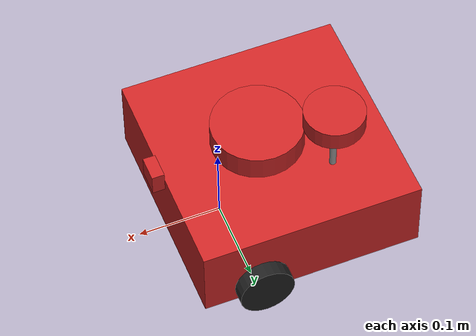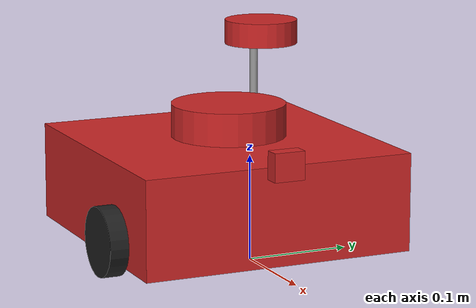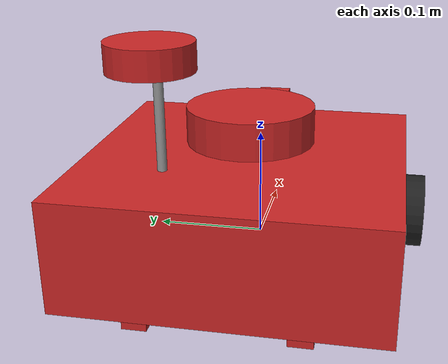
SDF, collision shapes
<?xml version='1.0'?>
<sdf version='1.7'>
  <model name='newred'>
    <link name='base_footprint'>
      <inertial>
        <pose>-0.006056 0 0.019264 0 -0 0</pose>
        <mass>1.49691</mass>
        <inertia>
          <ixx>0.0133097</ixx>
          <ixy>0</ixy>
          <ixz>0.00091065</ixz>
          <iyy>0.0139133</iyy>
          <iyz>0</iyz>
          <izz>0.018379</izz>
        </inertia>
      </inertial>
      <sensor name='Pi Camera' type='camera'>
        <always_on>1</always_on>
        <visualize>0</visualize>
        <camera>
          <horizontal_fov>1.0856</horizontal_fov>
          <image>
            <width>640</width>
            <height>480</height>
            <format>R8G8B8</format>
          </image>
          <clip>
            <near>0.03</near>
            <far>100</far>
          </clip>
        </camera>
        <plugin name='camera_controller' filename='libgazebo_ros_camera.so'>
          <alwaysOn>1</alwaysOn>
          <updateRate>30.0</updateRate>
          <cameraName>camera</cameraName>
          <frameName>camera_rgb_optical_frame</frameName>
          <imageTopicName>rgb/image_raw</imageTopicName>
          <cameraInfoTopicName>rgb/camera_info</cameraInfoTopicName>
          <hackBaseline>0.07</hackBaseline>
          <distortionK1>0.0</distortionK1>
          <distortionK2>0.0</distortionK2>
          <distortionK3>0.0</distortionK3>
          <distortionT1>0.0</distortionT1>
          <distortionT2>0.0</distortionT2>
          <robotNamespace>/red1/</robotNamespace>
        </plugin>
        <pose>0.076 0 0.103 0 -0 0</pose>
      </sensor>
      <sensor name='imu' type='imu'>
        <always_on>1</always_on>
        <visualize>0</visualize>
        <pose>0 0 0.078 0 -0 0</pose>
        <imu/>
      </sensor>
      <sensor name='lds_lfcd_sensor' type='ray'>
        <visualize>0</visualize>
        <update_rate>5</update_rate>
        <ray>
          <scan>
            <horizontal>
              <samples>360</samples>
              <resolution>1</resolution>
              <min_angle>0</min_angle>
              <max_angle>6.28319</max_angle>
            </horizontal>
            <vertical>
              <samples>1</samples>
              <min_angle>0</min_angle>
              <max_angle>0</max_angle>
            </vertical>
          </scan>
          <range>
            <min>0.12</min>
            <max>3.5</max>
            <resolution>0.015</resolution>
          </range>
          <noise>
            <type>gaussian</type>
            <mean>0</mean>
            <stddev>0.01</stddev>
          </noise>
        </ray>
        <plugin name='gazebo_ros_lds_lfcd_controller' filename='libgazebo_ros_laser.so'>
          <topicName>scan</topicName>
          <frameName>base_scan</frameName>
          <robotNamespace>/red1/</robotNamespace>
        </plugin>
        <pose>-0.064 0 0.132 0 -0 0</pose>
      </sensor>
      <self_collide>0</self_collide>
      <enable_wind>0</enable_wind>
      <kinematic>0</kinematic>
      <pose>0 0 0 0 -0 0</pose>
      <gravity>1</gravity>
      <visual name='base_footprint_fixed_joint_lump__base_link_visual'>
        <pose>-0.064 0 0.01 0 -0 0</pose>
        <geometry>
          <mesh>
            <scale>0.001 0.001 0.001</scale>
            <uri>/home/beatriz/catkin_ws/src/turtlebot3/turtlebot3_description/meshes/bases/waffle_pi_base.stl</uri>
          </mesh>
        </geometry>
        <material>
          <script>
            <name>Gazebo/Red</name>
            <uri>file://media/materials/scripts/gazebo.material</uri>
          </script>
          <shader type='pixel'>
            <normal_map>__default__</normal_map>
          </shader>
        </material>
        <transparency>0</transparency>
        <cast_shadows>1</cast_shadows>
      </visual>
      <visual name='base_footprint_fixed_joint_lump__base_scan_visual_1'>
        <pose>-0.064 0 0.132 0 -0 0</pose>
        <geometry>
          <mesh>
            <scale>0.001 0.001 0.001</scale>
            <uri>/home/beatriz/catkin_ws/src/turtlebot3/turtlebot3_description/meshes/sensors/lds.stl</uri>
          </mesh>
        </geometry>
        <material>
          <script>
            <name>Gazebo/FlatBlack</name>
            <uri>file://media/materials/scripts/gazebo.material</uri>
          </script>
          <shader type='pixel'>
            <normal_map>__default__</normal_map>
          </shader>
        </material>
        <transparency>0</transparency>
        <cast_shadows>1</cast_shadows>
      </visual>
      <collision name='base_footprint_fixed_joint_lump__base_link_collision'>
        <laser_retro>0</laser_retro>
        <max_contacts>10</max_contacts>
        <pose>-0.064 0 0.057 0 -0 0</pose>
        <geometry>
          <box>
            <size>0.266 0.266 0.094</size>
          </box>
        </geometry>
        <surface>
          <friction>
            <ode>
              <mu>1</mu>
              <mu2>1</mu2>
              <fdir1>0 0 0</fdir1>
              <slip1>0</slip1>
              <slip2>0</slip2>
            </ode>
            <torsional>
              <coefficient>1</coefficient>
              <patch_radius>0</patch_radius>
              <surface_radius>0</surface_radius>
              <use_patch_radius>1</use_patch_radius>
              <ode>
                <slip>0</slip>
              </ode>
            </torsional>
          </friction>
          <bounce>
            <restitution_coefficient>0</restitution_coefficient>
            <threshold>1e+06</threshold>
          </bounce>
          <contact>
            <collide_without_contact>0</collide_without_contact>
            <collide_without_contact_bitmask>1</collide_without_contact_bitmask>
            <collide_bitmask>1</collide_bitmask>
            <ode>
              <soft_cfm>0</soft_cfm>
              <soft_erp>0.2</soft_erp>
              <kp>1e+13</kp>
              <kd>1</kd>
              <max_vel>0.01</max_vel>
              <min_depth>0</min_depth>
            </ode>
            <bullet>
              <split_impulse>1</split_impulse>
              <split_impulse_penetration_threshold>-0.01</split_impulse_penetration_threshold>
              <soft_cfm>0</soft_cfm>
              <soft_erp>0.2</soft_erp>
              <kp>1e+13</kp>
              <kd>1</kd>
            </bullet>
          </contact>
        </surface>
      </collision>
      <collision name='base_footprint_fixed_joint_lump__caster_back_left_link_collision_2'>
        <laser_retro>0</laser_retro>
        <max_contacts>10</max_contacts>
        <pose>-0.177 0.064001 0.005 -1.57 0 0</pose>
        <geometry>
          <box>
            <size>0.03 0.009 0.02</size>
          </box>
        </geometry>
        <surface>
          <friction>
            <ode>
              <mu>0.1</mu>
              <mu2>0.1</mu2>
              <fdir1>0 0 0</fdir1>
              <slip1>0</slip1>
              <slip2>0</slip2>
            </ode>
            <torsional>
              <coefficient>1</coefficient>
              <patch_radius>0</patch_radius>
              <surface_radius>0</surface_radius>
              <use_patch_radius>1</use_patch_radius>
              <ode>
                <slip>0</slip>
              </ode>
            </torsional>
          </friction>
          <bounce>
            <restitution_coefficient>0</restitution_coefficient>
            <threshold>1e+06</threshold>
          </bounce>
          <contact>
            <collide_without_contact>0</collide_without_contact>
            <collide_without_contact_bitmask>1</collide_without_contact_bitmask>
            <collide_bitmask>1</collide_bitmask>
            <ode>
              <soft_cfm>0</soft_cfm>
              <soft_erp>0.2</soft_erp>
              <kp>1e+06</kp>
              <kd>100</kd>
              <max_vel>1</max_vel>
              <min_depth>0.001</min_depth>
            </ode>
            <bullet>
              <split_impulse>1</split_impulse>
              <split_impulse_penetration_threshold>-0.01</split_impulse_penetration_threshold>
              <soft_cfm>0</soft_cfm>
              <soft_erp>0.2</soft_erp>
              <kp>1e+06</kp>
              <kd>100</kd>
            </bullet>
          </contact>
        </surface>
      </collision>
      <collision name='base_footprint_fixed_joint_lump__camera_link_collision_1'>
        <laser_retro>0</laser_retro>
        <max_contacts>10</max_contacts>
        <pose>0.078 0 0.107 0 -0 0</pose>
        <geometry>
          <box>
            <size>0.015 0.03 0.027</size>
          </box>
        </geometry>
        <surface>
          <friction>
            <ode>
              <mu>1</mu>
              <mu2>1</mu2>
              <fdir1>0 0 0</fdir1>
              <slip1>0</slip1>
              <slip2>0</slip2>
            </ode>
            <torsional>
              <coefficient>1</coefficient>
              <patch_radius>0</patch_radius>
              <surface_radius>0</surface_radius>
              <use_patch_radius>1</use_patch_radius>
              <ode>
                <slip>0</slip>
              </ode>
            </torsional>
          </friction>
          <bounce>
            <restitution_coefficient>0</restitution_coefficient>
            <threshold>1e+06</threshold>
          </bounce>
          <contact>
            <collide_without_contact>0</collide_without_contact>
            <collide_without_contact_bitmask>1</collide_without_contact_bitmask>
            <collide_bitmask>1</collide_bitmask>
            <ode>
              <soft_cfm>0</soft_cfm>
              <soft_erp>0.2</soft_erp>
              <kp>1e+13</kp>
              <kd>1</kd>
              <max_vel>0.01</max_vel>
              <min_depth>0</min_depth>
            </ode>
            <bullet>
              <split_impulse>1</split_impulse>
              <split_impulse_penetration_threshold>-0.01</split_impulse_penetration_threshold>
              <soft_cfm>0</soft_cfm>
              <soft_erp>0.2</soft_erp>
              <kp>1e+13</kp>
              <kd>1</kd>
            </bullet>
          </contact>
        </surface>
      </collision>
      <collision name='base_footprint_fixed_joint_lump__caster_back_right_link_collision_3'>
        <laser_retro>0</laser_retro>
        <max_contacts>10</max_contacts>
        <pose>-0.177 -0.063999 0.005 -1.57 0 0</pose>
        <geometry>
          <box>
            <size>0.03 0.009 0.02</size>
          </box>
        </geometry>
        <surface>
          <friction>
            <ode>
              <mu>0.1</mu>
              <mu2>0.1</mu2>
              <fdir1>0 0 0</fdir1>
              <slip1>0</slip1>
              <slip2>0</slip2>
            </ode>
            <torsional>
              <coefficient>1</coefficient>
              <patch_radius>0</patch_radius>
              <surface_radius>0</surface_radius>
              <use_patch_radius>1</use_patch_radius>
              <ode>
                <slip>0</slip>
              </ode>
            </torsional>
          </friction>
          <bounce>
            <restitution_coefficient>0</restitution_coefficient>
            <threshold>1e+06</threshold>
          </bounce>
          <contact>
            <collide_without_contact>0</collide_without_contact>
            <collide_without_contact_bitmask>1</collide_without_contact_bitmask>
            <collide_bitmask>1</collide_bitmask>
            <ode>
              <soft_cfm>0</soft_cfm>
              <soft_erp>0.2</soft_erp>
              <kp>1e+06</kp>
              <kd>100</kd>
              <max_vel>1</max_vel>
              <min_depth>0.001</min_depth>
            </ode>
            <bullet>
              <split_impulse>1</split_impulse>
              <split_impulse_penetration_threshold>-0.01</split_impulse_penetration_threshold>
              <soft_cfm>0</soft_cfm>
              <soft_erp>0.2</soft_erp>
              <kp>1e+06</kp>
              <kd>100</kd>
            </bullet>
          </contact>
        </surface>
      </collision>
      <collision name='base_footprint_fixed_joint_lump__base_scan_collision_4'>
        <laser_retro>0</laser_retro>
        <max_contacts>10</max_contacts>
        <pose>-0.049 0 0.1255 0 -0 0</pose>
        <geometry>
          <cylinder>
            <radius>0.055</radius>
            <length>0.0315</length>
          </cylinder>
        </geometry>
        <surface>
          <friction>
            <ode>
              <mu>1</mu>
              <mu2>1</mu2>
              <fdir1>0 0 0</fdir1>
              <slip1>0</slip1>
              <slip2>0</slip2>
            </ode>
            <torsional>
              <coefficient>1</coefficient>
              <patch_radius>0</patch_radius>
              <surface_radius>0</surface_radius>
              <use_patch_radius>1</use_patch_radius>
              <ode>
                <slip>0</slip>
              </ode>
            </torsional>
          </friction>
          <bounce>
            <restitution_coefficient>0</restitution_coefficient>
            <threshold>1e+06</threshold>
          </bounce>
          <contact>
            <collide_without_contact>0</collide_without_contact>
            <collide_without_contact_bitmask>1</collide_without_contact_bitmask>
            <collide_bitmask>1</collide_bitmask>
            <ode>
              <soft_cfm>0</soft_cfm>
              <soft_erp>0.2</soft_erp>
              <kp>1e+13</kp>
              <kd>1</kd>
              <max_vel>0.01</max_vel>
              <min_depth>0</min_depth>
            </ode>
            <bullet>
              <split_impulse>1</split_impulse>
              <split_impulse_penetration_threshold>-0.01</split_impulse_penetration_threshold>
              <soft_cfm>0</soft_cfm>
              <soft_erp>0.2</soft_erp>
              <kp>1e+13</kp>
              <kd>1</kd>
            </bullet>
          </contact>
        </surface>
      </collision>
    </link>
    <link name='link_0'>
      <inertial>
        <mass>9.91e-06</mass>
        <inertia>
          <ixx>2e-08</ixx>
          <ixy>0</ixy>
          <ixz>0</ixz>
          <iyy>2e-08</iyy>
          <iyz>0</iyz>
          <izz>0</izz>
        </inertia>
        <pose>0 0 0 0 -0 0</pose>
      </inertial>
      <pose>-0.118459 0.058818 0.120511 3e-06 -0.003179 -1.9e-05</pose>
      <gravity>1</gravity>
      <self_collide>0</self_collide>
      <kinematic>0</kinematic>
      <enable_wind>0</enable_wind>
      <visual name='visual'>
        <pose>0 0 0 0 -0 0</pose>
        <geometry>
          <cylinder>
            <radius>0.00397711</radius>
            <length>0.159994</length>
          </cylinder>
        </geometry>
        <material>
          <lighting>1</lighting>
          <script>
            <uri>file://media/materials/scripts/gazebo.material</uri>
            <name>Gazebo/Grey</name>
          </script>
          <shader type='pixel'>
            <normal_map>__default__</normal_map>
          </shader>
          <specular>0 0 0 1</specular>
          <ambient>0 0 0 1</ambient>
          <diffuse>0 0 0 1</diffuse>
          <emissive>0 0 0 1</emissive>
        </material>
        <transparency>0</transparency>
        <cast_shadows>1</cast_shadows>
      </visual>
      <collision name='collision'>
        <laser_retro>0</laser_retro>
        <max_contacts>10</max_contacts>
        <pose>0 0 0 0 -0 0</pose>
        <geometry>
          <cylinder>
            <radius>0.003977</radius>
            <length>0.159994</length>
          </cylinder>
        </geometry>
        <surface>
          <friction>
            <ode>
              <mu>1</mu>
              <mu2>1</mu2>
              <fdir1>0 0 0</fdir1>
              <slip1>0</slip1>
              <slip2>0</slip2>
            </ode>
            <torsional>
              <coefficient>1</coefficient>
              <patch_radius>0</patch_radius>
              <surface_radius>0</surface_radius>
              <use_patch_radius>1</use_patch_radius>
              <ode>
                <slip>0</slip>
              </ode>
            </torsional>
          </friction>
          <bounce>
            <restitution_coefficient>0</restitution_coefficient>
            <threshold>1e+06</threshold>
          </bounce>
          <contact>
            <collide_without_contact>0</collide_without_contact>
            <collide_without_contact_bitmask>1</collide_without_contact_bitmask>
            <collide_bitmask>1</collide_bitmask>
            <ode>
              <soft_cfm>0</soft_cfm>
              <soft_erp>0.2</soft_erp>
              <kp>1e+13</kp>
              <kd>1</kd>
              <max_vel>0.01</max_vel>
              <min_depth>0</min_depth>
            </ode>
            <bullet>
              <split_impulse>1</split_impulse>
              <split_impulse_penetration_threshold>-0.01</split_impulse_penetration_threshold>
              <soft_cfm>0</soft_cfm>
              <soft_erp>0.2</soft_erp>
              <kp>1e+13</kp>
              <kd>1</kd>
            </bullet>
          </contact>
        </surface>
      </collision>
    </link>
    <link name='link_0_clone'>
      <inertial>
        <mass>0.00011871</mass>
        <inertia>
          <ixx>4e-08</ixx>
          <ixy>0</ixy>
          <ixz>0</ixz>
          <iyy>4e-08</iyy>
          <iyz>0</iyz>
          <izz>8e-08</izz>
        </inertia>
        <pose>0 0 0 0 -0 0</pose>
      </inertial>
      <pose>-0.115744 0.065091 0.195734 6e-06 -0.006358 -3.8e-05</pose>
      <gravity>1</gravity>
      <self_collide>0</self_collide>
      <kinematic>0</kinematic>
      <enable_wind>0</enable_wind>
      <visual name='visual'>
        <pose>0 0 0 0 -0 0</pose>
        <geometry>
          <cylinder>
            <radius>0.0357534</radius>
            <length>0.0236595</length>
          </cylinder>
        </geometry>
        <material>
          <lighting>1</lighting>
          <script>
            <uri>file://media/materials/scripts/gazebo.material</uri>
            <name>Gazebo/Red</name>
          </script>
          <shader type='pixel'>
            <normal_map>__default__</normal_map>
          </shader>
          <ambient>0.8 0 0 1</ambient>
          <diffuse>0 0 0 1</diffuse>
          <specular>0.914 0.725 0.431 1</specular>
          <emissive>0 0 0 1</emissive>
        </material>
        <transparency>0</transparency>
        <cast_shadows>1</cast_shadows>
      </visual>
      <collision name='collision'>
        <laser_retro>0</laser_retro>
        <max_contacts>10</max_contacts>
        <pose>0 0 0 0 -0 0</pose>
        <geometry>
          <cylinder>
            <radius>0.035753</radius>
            <length>0.02366</length>
          </cylinder>
        </geometry>
        <surface>
          <friction>
            <ode>
              <mu>1</mu>
              <mu2>1</mu2>
              <fdir1>0 0 0</fdir1>
              <slip1>0</slip1>
              <slip2>0</slip2>
            </ode>
            <torsional>
              <coefficient>1</coefficient>
              <patch_radius>0</patch_radius>
              <surface_radius>0</surface_radius>
              <use_patch_radius>1</use_patch_radius>
              <ode>
                <slip>0</slip>
              </ode>
            </torsional>
          </friction>
          <bounce>
            <restitution_coefficient>0</restitution_coefficient>
            <threshold>1e+06</threshold>
          </bounce>
          <contact>
            <collide_without_contact>0</collide_without_contact>
            <collide_without_contact_bitmask>1</collide_without_contact_bitmask>
            <collide_bitmask>1</collide_bitmask>
            <ode>
              <soft_cfm>0</soft_cfm>
              <soft_erp>0.2</soft_erp>
              <kp>1e+13</kp>
              <kd>1</kd>
              <max_vel>0.01</max_vel>
              <min_depth>0</min_depth>
            </ode>
            <bullet>
              <split_impulse>1</split_impulse>
              <split_impulse_penetration_threshold>-0.01</split_impulse_penetration_threshold>
              <soft_cfm>0</soft_cfm>
              <soft_erp>0.2</soft_erp>
              <kp>1e+13</kp>
              <kd>1</kd>
            </bullet>
          </contact>
        </surface>
      </collision>
    </link>
    <link name='wheel_left_link'>
      <pose>-0 0.144 0.033 -1.57 -0 -0</pose>
      <inertial>
        <pose>0 0 0 0 -0 0</pose>
        <mass>0.0284989</mass>
        <inertia>
          <ixx>1.11756e-05</ixx>
          <ixy>-4.23698e-11</ixy>
          <ixz>-5.93817e-09</ixz>
          <iyy>1.11924e-05</iyy>
          <iyz>-1.44001e-11</iyz>
          <izz>2.07126e-05</izz>
        </inertia>
      </inertial>
      <self_collide>0</self_collide>
      <enable_wind>0</enable_wind>
      <kinematic>0</kinematic>
      <visual name='wheel_left_link_visual'>
        <pose>0 0 0 1.57 -0 0</pose>
        <geometry>
          <mesh>
            <scale>0.001 0.001 0.001</scale>
            <uri>/home/beatriz/catkin_ws/src/turtlebot3/turtlebot3_description/meshes/wheels/left_tire.stl</uri>
          </mesh>
        </geometry>
        <material>
          <script>
            <name>Gazebo/FlatBlack</name>
            <uri>file://media/materials/scripts/gazebo.material</uri>
          </script>
          <shader type='pixel'/>
        </material>
        <transparency>0</transparency>
        <cast_shadows>1</cast_shadows>
      </visual>
      <collision name='wheel_left_link_collision'>
        <laser_retro>0</laser_retro>
        <max_contacts>10</max_contacts>
        <pose>0 0 0 0 -0 0</pose>
        <geometry>
          <cylinder>
            <radius>0.033</radius>
            <length>0.018</length>
          </cylinder>
        </geometry>
        <surface>
          <friction>
            <ode>
              <mu>0.1</mu>
              <mu2>0.1</mu2>
              <fdir1>1 0 0</fdir1>
              <slip1>0</slip1>
              <slip2>0</slip2>
            </ode>
            <torsional>
              <coefficient>1</coefficient>
              <patch_radius>0</patch_radius>
              <surface_radius>0</surface_radius>
              <use_patch_radius>1</use_patch_radius>
              <ode>
                <slip>0</slip>
              </ode>
            </torsional>
          </friction>
          <bounce>
            <restitution_coefficient>0</restitution_coefficient>
            <threshold>1e+06</threshold>
          </bounce>
          <contact>
            <collide_without_contact>0</collide_without_contact>
            <collide_without_contact_bitmask>1</collide_without_contact_bitmask>
            <collide_bitmask>1</collide_bitmask>
            <ode>
              <soft_cfm>0</soft_cfm>
              <soft_erp>0.2</soft_erp>
              <kp>500000</kp>
              <kd>10</kd>
              <max_vel>0.1</max_vel>
              <min_depth>0.001</min_depth>
            </ode>
            <bullet>
              <split_impulse>1</split_impulse>
              <split_impulse_penetration_threshold>-0.01</split_impulse_penetration_threshold>
              <soft_cfm>0</soft_cfm>
              <soft_erp>0.2</soft_erp>
              <kp>500000</kp>
              <kd>10</kd>
            </bullet>
          </contact>
        </surface>
      </collision>
    </link>
    <link name='wheel_right_link'>
      <pose>0 -0.144 0.033 -1.57 -0 -0</pose>
      <inertial>
        <pose>0 0 0 0 -0 0</pose>
        <mass>0.0284989</mass>
        <inertia>
          <ixx>1.11756e-05</ixx>
          <ixy>-4.23698e-11</ixy>
          <ixz>-5.93817e-09</ixz>
          <iyy>1.11924e-05</iyy>
          <iyz>-1.44001e-11</iyz>
          <izz>2.07126e-05</izz>
        </inertia>
      </inertial>
      <self_collide>0</self_collide>
      <enable_wind>0</enable_wind>
      <kinematic>0</kinematic>
      <visual name='wheel_right_link_visual'>
        <pose>0 0 0 1.57 -0 0</pose>
        <geometry>
          <mesh>
            <scale>0.001 0.001 0.001</scale>
            <uri>/home/beatriz/catkin_ws/src/turtlebot3/turtlebot3_description/meshes/wheels/right_tire.stl</uri>
          </mesh>
        </geometry>
        <material>
          <script>
            <name>Gazebo/FlatBlack</name>
            <uri>file://media/materials/scripts/gazebo.material</uri>
          </script>
          <shader type='pixel'/>
        </material>
        <transparency>0</transparency>
        <cast_shadows>1</cast_shadows>
      </visual>
      <collision name='wheel_right_link_collision'>
        <laser_retro>0</laser_retro>
        <max_contacts>10</max_contacts>
        <pose>0 0 0 0 -0 0</pose>
        <geometry>
          <cylinder>
            <radius>0.033</radius>
            <length>0.018</length>
          </cylinder>
        </geometry>
        <surface>
          <friction>
            <ode>
              <mu>0.1</mu>
              <mu2>0.1</mu2>
              <fdir1>1 0 0</fdir1>
              <slip1>0</slip1>
              <slip2>0</slip2>
            </ode>
            <torsional>
              <coefficient>1</coefficient>
              <patch_radius>0</patch_radius>
              <surface_radius>0</surface_radius>
              <use_patch_radius>1</use_patch_radius>
              <ode>
                <slip>0</slip>
              </ode>
            </torsional>
          </friction>
          <bounce>
            <restitution_coefficient>0</restitution_coefficient>
            <threshold>1e+06</threshold>
          </bounce>
          <contact>
            <collide_without_contact>0</collide_without_contact>
            <collide_without_contact_bitmask>1</collide_without_contact_bitmask>
            <collide_bitmask>1</collide_bitmask>
            <ode>
              <soft_cfm>0</soft_cfm>
              <soft_erp>0.2</soft_erp>
              <kp>500000</kp>
              <kd>10</kd>
              <max_vel>0.1</max_vel>
              <min_depth>0.001</min_depth>
            </ode>
            <bullet>
              <split_impulse>1</split_impulse>
              <split_impulse_penetration_threshold>-0.01</split_impulse_penetration_threshold>
              <soft_cfm>0</soft_cfm>
              <soft_erp>0.2</soft_erp>
              <kp>500000</kp>
              <kd>10</kd>
            </bullet>
          </contact>
        </surface>
      </collision>
    </link>
    <joint name='wheel_left_joint' type='revolute'>
      <parent>base_footprint</parent>
      <child>wheel_left_link</child>
      <pose>0 -0 0 0 -0 0</pose>
      <axis>
        <xyz>0 0 1</xyz>
        <limit>
          <lower>-1e+16</lower>
          <upper>1e+16</upper>
          <effort>-1</effort>
          <velocity>-1</velocity>
        </limit>
        <dynamics>
          <spring_reference>0</spring_reference>
          <spring_stiffness>0</spring_stiffness>
          <damping>0</damping>
          <friction>0</friction>
        </dynamics>
      </axis>
      <physics>
        <ode>
          <limit>
            <cfm>0</cfm>
            <erp>0.2</erp>
          </limit>
          <suspension>
            <cfm>0</cfm>
            <erp>0.2</erp>
          </suspension>
        </ode>
      </physics>
    </joint>
    <joint name='wheel_right_joint' type='revolute'>
      <parent>base_footprint</parent>
      <child>wheel_right_link</child>
      <pose>0 -0 0 0 -0 0</pose>
      <axis>
        <xyz>0 0 1</xyz>
        <limit>
          <lower>-1e+16</lower>
          <upper>1e+16</upper>
          <effort>-1</effort>
          <velocity>-1</velocity>
        </limit>
        <dynamics>
          <spring_reference>0</spring_reference>
          <spring_stiffness>0</spring_stiffness>
          <damping>0</damping>
          <friction>0</friction>
        </dynamics>
      </axis>
      <physics>
        <ode>
          <limit>
            <cfm>0</cfm>
            <erp>0.2</erp>
          </limit>
          <suspension>
            <cfm>0</cfm>
            <erp>0.2</erp>
          </suspension>
        </ode>
      </physics>
    </joint>
    <static>0</static>
    <allow_auto_disable>1</allow_auto_disable>
    <plugin name='imu_plugin' filename='libgazebo_ros_imu.so'>
      <alwaysOn>1</alwaysOn>
      <topicName>imu</topicName>
      <serviceName>imu_service</serviceName>
      <gaussianNoise>0.0</gaussianNoise>
      <updateRate>0</updateRate>
      <imu>
        <noise>
          <type>gaussian</type>
          <rate>
            <mean>0.0</mean>
            <stddev>2e-4</stddev>
            <bias_mean>0.0000075</bias_mean>
            <bias_stddev>0.0000008</bias_stddev>
          </rate>
          <accel>
            <mean>0.0</mean>
            <stddev>1.7e-2</stddev>
            <bias_mean>0.1</bias_mean>
            <bias_stddev>0.001</bias_stddev>
          </accel>
        </noise>
      </imu>
      <robotNamespace>/red1/</robotNamespace>
      <bodyName>base_footprint</bodyName>
      <frameName>base_footprint</frameName>
      <xyzOffset>0 0 -0.156</xyzOffset>
      <rpyOffset>0 -0 0</rpyOffset>
    </plugin>
    <plugin name='turtlebot3_waffle_pi_controller' filename='libgazebo_ros_diff_drive.so'>
      <commandTopic>cmd_vel</commandTopic>
      <odometryTopic>odom</odometryTopic>
      <odometryFrame>odom</odometryFrame>
      <odometrySource>world</odometrySource>
      <publishOdomTF>1</publishOdomTF>
      <robotBaseFrame>base_footprint</robotBaseFrame>
      <publishWheelTF>0</publishWheelTF>
      <publishTf>1</publishTf>
      <publishWheelJointState>1</publishWheelJointState>
      <legacyMode>0</legacyMode>
      <updateRate>30</updateRate>
      <leftJoint>wheel_left_joint</leftJoint>
      <rightJoint>wheel_right_joint</rightJoint>
      <wheelSeparation>0.287</wheelSeparation>
      <wheelDiameter>0.066</wheelDiameter>
      <wheelAcceleration>1</wheelAcceleration>
      <wheelTorque>10</wheelTorque>
      <rosDebugLevel>na</rosDebugLevel>
      <robotNamespace>/red1/</robotNamespace>
    </plugin>
  </model>
</sdf>
